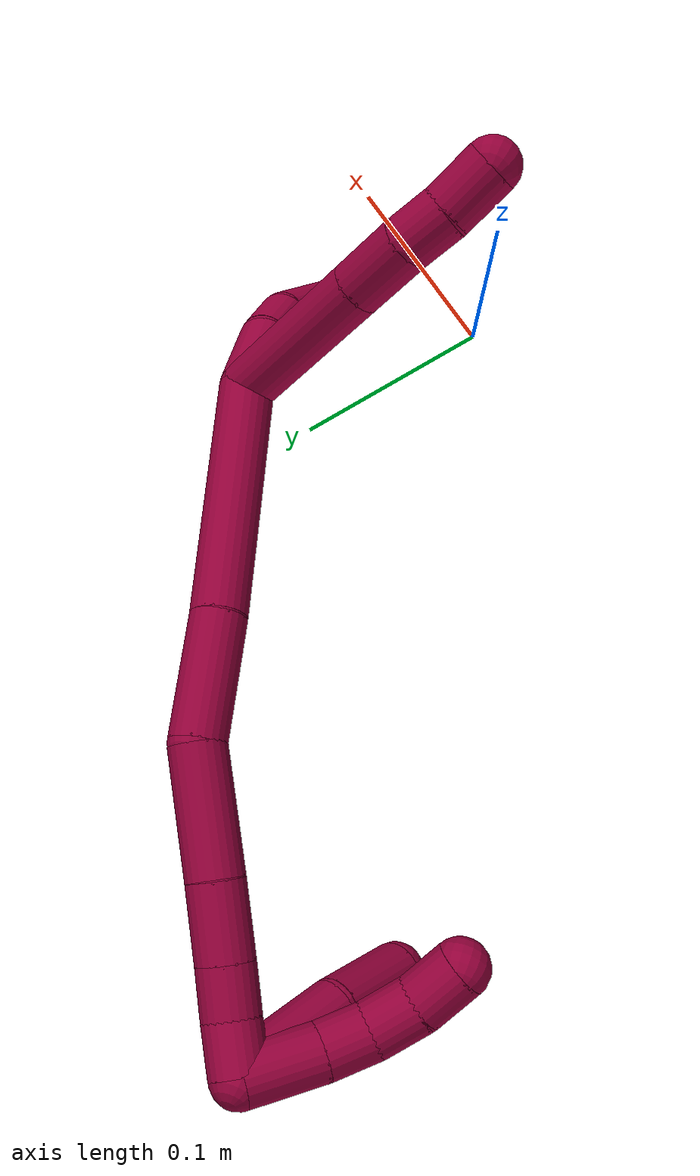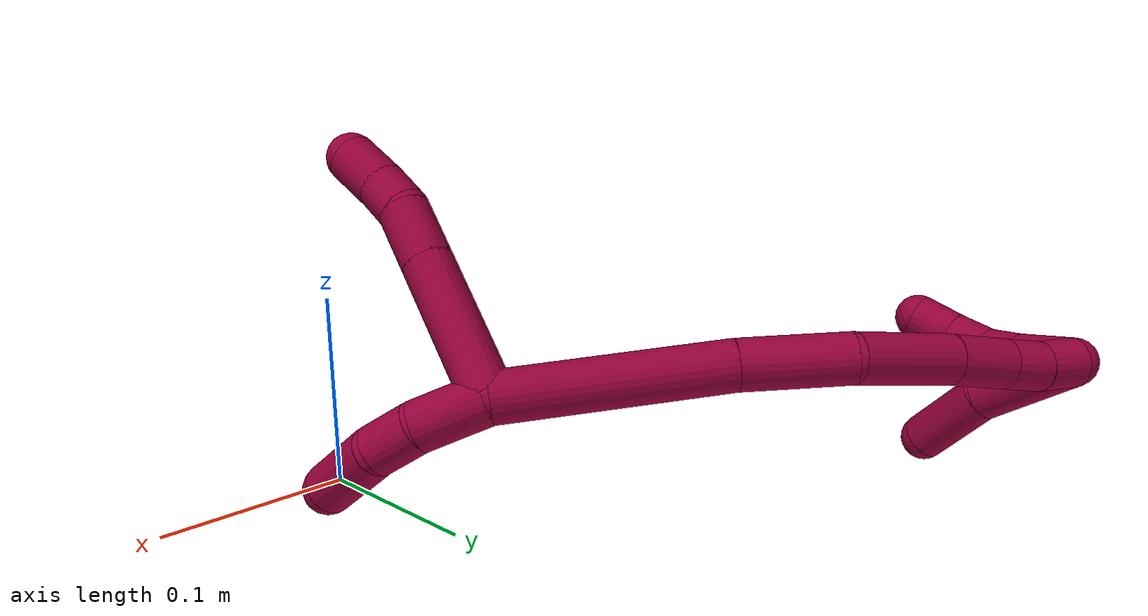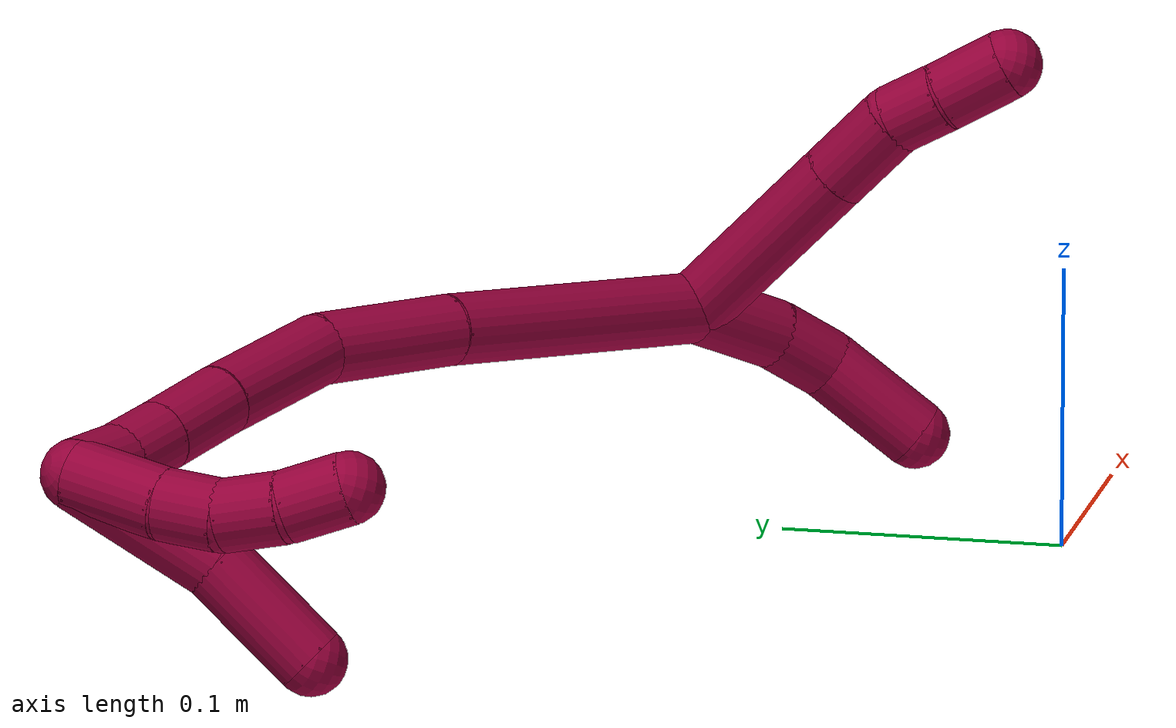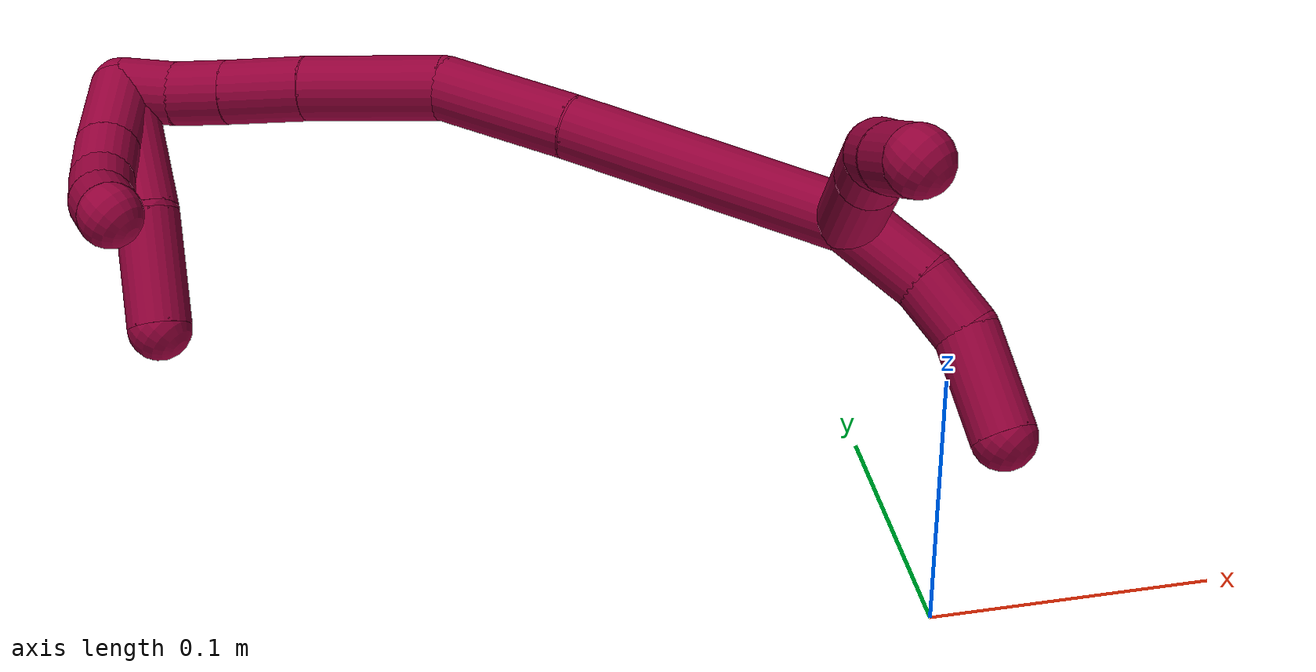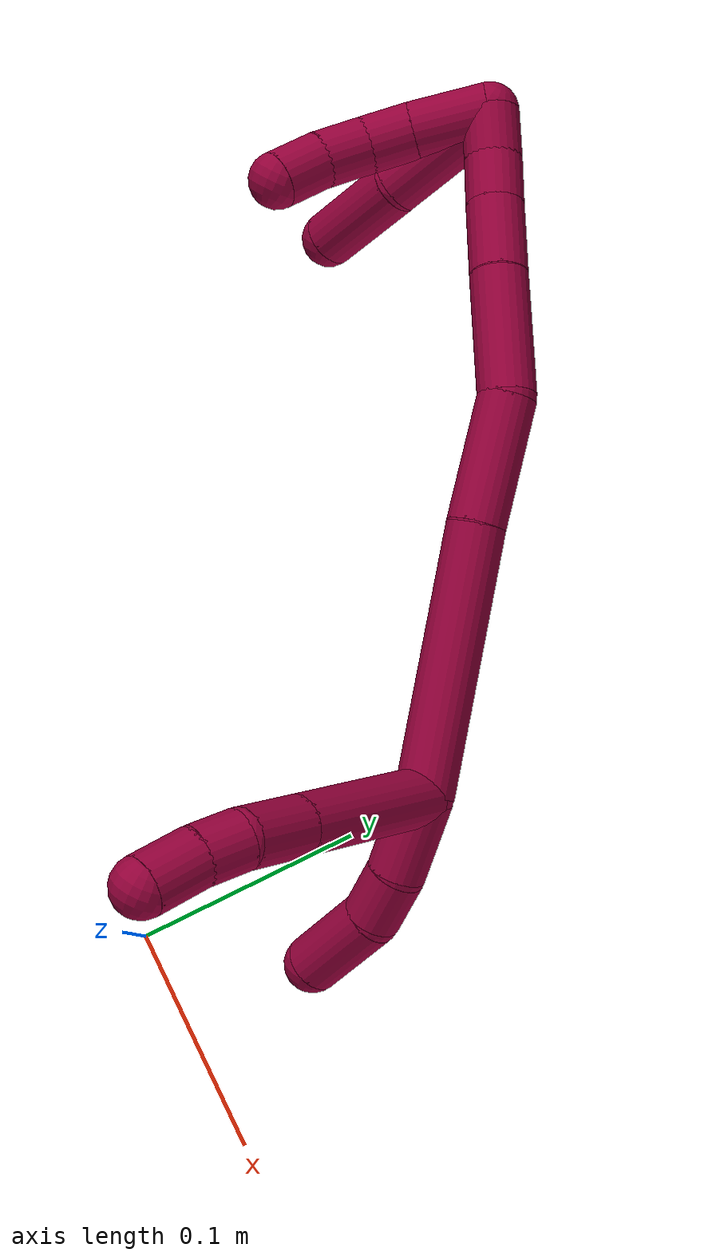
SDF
<sdf version="1.7">
 <world name="default">
  <model name="8">
   <static>0</static>
   <link name="8">
    <collision name="collision-cylinder-e_1_2_8">
     <pose>0.00767 -0.03556 -0.006796 1.75964 0.208768 0.252026</pose>
     <geometry><cylinder><radius>0.0125</radius><length>0.074013</length></cylinder></geometry>
     <surface>
      <friction><ode><mu>1.16</mu><mu2>1.16</mu2><slip1>0</slip1><slip2>0</slip2></ode></friction>
      <contact><ode><kp>1e+06</kp><kd>1</kd><max_vel>0</max_vel><min_depth>0.001</min_depth></ode></contact>
     </surface>
    </collision>
    <visual name="visual-cylinder-e_1_2_8">
     <pose>0.00767 -0.03556 -0.006796 1.75964 0.208768 0.252026</pose>
     <geometry><cylinder><radius>0.0125</radius><length>0.074013</length></cylinder></geometry>
     <material><ambient>0.584314 0 0.227451 1</ambient></material>
    </visual>
    <collision name="collision-cylinder-e_2_8_9">
     <pose>0.018514 -0.085842 -0.016408 1.75978 0.208717 0.251998</pose>
     <geometry><cylinder><radius>0.0125</radius><length>0.030644</length></cylinder></geometry>
     <surface>
      <friction><ode><mu>1.16</mu><mu2>1.16</mu2><slip1>0</slip1><slip2>0</slip2></ode></friction>
      <contact><ode><kp>1e+06</kp><kd>1</kd><max_vel>0</max_vel><min_depth>0.001</min_depth></ode></contact>
     </surface>
    </collision>
    <visual name="visual-cylinder-e_2_8_9">
     <pose>0.018514 -0.085842 -0.016408 1.75978 0.208717 0.251998</pose>
     <geometry><cylinder><radius>0.0125</radius><length>0.030644</length></cylinder></geometry>
     <material><ambient>0.584314 0 0.227451 1</ambient></material>
    </visual>
    <collision name="collision-cylinder-e_3_9_10">
     <pose>0.022336 -0.109512 -0.023729 2.03719 0.064527 0.104669</pose>
     <geometry><cylinder><radius>0.0125</radius><length>0.020078</length></cylinder></geometry>
     <surface>
      <friction><ode><mu>1.16</mu><mu2>1.16</mu2><slip1>0</slip1><slip2>0</slip2></ode></friction>
      <contact><ode><kp>1e+06</kp><kd>1</kd><max_vel>0</max_vel><min_depth>0.001</min_depth></ode></contact>
     </surface>
    </collision>
    <visual name="visual-cylinder-e_3_9_10">
     <pose>0.022336 -0.109512 -0.023729 2.03719 0.064527 0.104669</pose>
     <geometry><cylinder><radius>0.0125</radius><length>0.020078</length></cylinder></geometry>
     <material><ambient>0.584314 0 0.227451 1</ambient></material>
    </visual>
    <collision name="collision-cylinder-e_4_10_6">
     <pose>0.024982 -0.1292 -0.034577 2.10425 0.158827 0.277055</pose>
     <geometry><cylinder><radius>0.0125</radius><length>0.025265</length></cylinder></geometry>
     <surface>
      <friction><ode><mu>1.16</mu><mu2>1.16</mu2><slip1>0</slip1><slip2>0</slip2></ode></friction>
      <contact><ode><kp>1e+06</kp><kd>1</kd><max_vel>0</max_vel><min_depth>0.001</min_depth></ode></contact>
     </surface>
    </collision>
    <visual name="visual-cylinder-e_4_10_6">
     <pose>0.024982 -0.1292 -0.034577 2.10425 0.158827 0.277055</pose>
     <geometry><cylinder><radius>0.0125</radius><length>0.025265</length></cylinder></geometry>
     <material><ambient>0.584314 0 0.227451 1</ambient></material>
    </visual>
    <collision name="collision-cylinder-e_1_2_11">
     <pose>0.001226 0.001349 -0.017667 -3.06536 0.06909 -1.47249</pose>
     <geometry><cylinder><radius>0.0125</radius><length>0.035521</length></cylinder></geometry>
     <surface>
      <friction><ode><mu>1.16</mu><mu2>1.16</mu2><slip1>0</slip1><slip2>0</slip2></ode></friction>
      <contact><ode><kp>1e+06</kp><kd>1</kd><max_vel>0</max_vel><min_depth>0.001</min_depth></ode></contact>
     </surface>
    </collision>
    <visual name="visual-cylinder-e_1_2_11">
     <pose>0.001226 0.001349 -0.017667 -3.06536 0.06909 -1.47249</pose>
     <geometry><cylinder><radius>0.0125</radius><length>0.035521</length></cylinder></geometry>
     <material><ambient>0.584314 0 0.227451 1</ambient></material>
    </visual>
    <collision name="collision-cylinder-e_2_11_12">
     <pose>0.000638 0.003809 -0.047177 -3.04815 -0.151329 2.03635</pose>
     <geometry><cylinder><radius>0.0125</radius><length>0.024065</length></cylinder></geometry>
     <surface>
      <friction><ode><mu>1.16</mu><mu2>1.16</mu2><slip1>0</slip1><slip2>0</slip2></ode></friction>
      <contact><ode><kp>1e+06</kp><kd>1</kd><max_vel>0</max_vel><min_depth>0.001</min_depth></ode></contact>
     </surface>
    </collision>
    <visual name="visual-cylinder-e_2_11_12">
     <pose>0.000638 0.003809 -0.047177 -3.04815 -0.151329 2.03635</pose>
     <geometry><cylinder><radius>0.0125</radius><length>0.024065</length></cylinder></geometry>
     <material><ambient>0.584314 0 0.227451 1</ambient></material>
    </visual>
    <collision name="collision-cylinder-e_3_12_5">
     <pose>-0.010501 0.004875 -0.076946 3.13918 -0.479698 -3.13174</pose>
     <geometry><cylinder><radius>0.0125</radius><length>0.040414</length></cylinder></geometry>
     <surface>
      <friction><ode><mu>1.16</mu><mu2>1.16</mu2><slip1>0</slip1><slip2>0</slip2></ode></friction>
      <contact><ode><kp>1e+06</kp><kd>1</kd><max_vel>0</max_vel><min_depth>0.001</min_depth></ode></contact>
     </surface>
    </collision>
    <visual name="visual-cylinder-e_3_12_5">
     <pose>-0.010501 0.004875 -0.076946 3.13918 -0.479698 -3.13174</pose>
     <geometry><cylinder><radius>0.0125</radius><length>0.040414</length></cylinder></geometry>
     <material><ambient>0.584314 0 0.227451 1</ambient></material>
    </visual>
    <collision name="collision-cylinder-e_1_2_13">
     <pose>-0.022013 0.001237 0.051924 -0.023821 -0.400883 0.00484</pose>
     <geometry><cylinder><radius>0.0125</radius><length>0.112822</length></cylinder></geometry>
     <surface>
      <friction><ode><mu>1.16</mu><mu2>1.16</mu2><slip1>0</slip1><slip2>0</slip2></ode></friction>
      <contact><ode><kp>1e+06</kp><kd>1</kd><max_vel>0</max_vel><min_depth>0.001</min_depth></ode></contact>
     </surface>
    </collision>
    <visual name="visual-cylinder-e_1_2_13">
     <pose>-0.022013 0.001237 0.051924 -0.023821 -0.400883 0.00484</pose>
     <geometry><cylinder><radius>0.0125</radius><length>0.112822</length></cylinder></geometry>
     <material><ambient>0.584314 0 0.227451 1</ambient></material>
    </visual>
    <collision name="collision-cylinder-e_2_13_14">
     <pose>-0.055085 0.005168 0.129059 -0.106439 -0.411281 0.022222</pose>
     <geometry><cylinder><radius>0.0125</radius><length>0.055323</length></cylinder></geometry>
     <surface>
      <friction><ode><mu>1.16</mu><mu2>1.16</mu2><slip1>0</slip1><slip2>0</slip2></ode></friction>
      <contact><ode><kp>1e+06</kp><kd>1</kd><max_vel>0</max_vel><min_depth>0.001</min_depth></ode></contact>
     </surface>
    </collision>
    <visual name="visual-cylinder-e_2_13_14">
     <pose>-0.055085 0.005168 0.129059 -0.106439 -0.411281 0.022222</pose>
     <geometry><cylinder><radius>0.0125</radius><length>0.055323</length></cylinder></geometry>
     <material><ambient>0.584314 0 0.227451 1</ambient></material>
    </visual>
    <collision name="collision-cylinder-e_3_14_15">
     <pose>-0.084348 0.007605 0.175028 0.012344 -0.71992 -0.004646</pose>
     <geometry><cylinder><radius>0.0125</radius><length>0.055221</length></cylinder></geometry>
     <surface>
      <friction><ode><mu>1.16</mu><mu2>1.16</mu2><slip1>0</slip1><slip2>0</slip2></ode></friction>
      <contact><ode><kp>1e+06</kp><kd>1</kd><max_vel>0</max_vel><min_depth>0.001</min_depth></ode></contact>
     </surface>
    </collision>
    <visual name="visual-cylinder-e_3_14_15">
     <pose>-0.084348 0.007605 0.175028 0.012344 -0.71992 -0.004646</pose>
     <geometry><cylinder><radius>0.0125</radius><length>0.055221</length></cylinder></geometry>
     <material><ambient>0.584314 0 0.227451 1</ambient></material>
    </visual>
    <collision name="collision-cylinder-e_4_15_16">
     <pose>-0.113614 0.007955 0.207688 -0.050848 -0.748159 0.019965</pose>
     <geometry><cylinder><radius>0.0125</radius><length>0.032521</length></cylinder></geometry>
     <surface>
      <friction><ode><mu>1.16</mu><mu2>1.16</mu2><slip1>0</slip1><slip2>0</slip2></ode></friction>
      <contact><ode><kp>1e+06</kp><kd>1</kd><max_vel>0</max_vel><min_depth>0.001</min_depth></ode></contact>
     </surface>
    </collision>
    <visual name="visual-cylinder-e_4_15_16">
     <pose>-0.113614 0.007955 0.207688 -0.050848 -0.748159 0.019965</pose>
     <geometry><cylinder><radius>0.0125</radius><length>0.032521</length></cylinder></geometry>
     <material><ambient>0.584314 0 0.227451 1</ambient></material>
    </visual>
    <collision name="collision-cylinder-e_5_16_17">
     <pose>-0.13203 0.008999 0.227768 -0.053533 -0.731675 0.020512</pose>
     <geometry><cylinder><radius>0.0125</radius><length>0.022013</length></cylinder></geometry>
     <surface>
      <friction><ode><mu>1.16</mu><mu2>1.16</mu2><slip1>0</slip1><slip2>0</slip2></ode></friction>
      <contact><ode><kp>1e+06</kp><kd>1</kd><max_vel>0</max_vel><min_depth>0.001</min_depth></ode></contact>
     </surface>
    </collision>
    <visual name="visual-cylinder-e_5_16_17">
     <pose>-0.13203 0.008999 0.227768 -0.053533 -0.731675 0.020512</pose>
     <geometry><cylinder><radius>0.0125</radius><length>0.022013</length></cylinder></geometry>
     <material><ambient>0.584314 0 0.227451 1</ambient></material>
    </visual>
    <collision name="collision-cylinder-e_6_17_1">
     <pose>-0.146028 0.008524 0.244728 0.103612 -0.645156 -0.03466</pose>
     <geometry><cylinder><radius>0.0125</radius><length>0.0221</length></cylinder></geometry>
     <surface>
      <friction><ode><mu>1.16</mu><mu2>1.16</mu2><slip1>0</slip1><slip2>0</slip2></ode></friction>
      <contact><ode><kp>1e+06</kp><kd>1</kd><max_vel>0</max_vel><min_depth>0.001</min_depth></ode></contact>
     </surface>
    </collision>
    <visual name="visual-cylinder-e_6_17_1">
     <pose>-0.146028 0.008524 0.244728 0.103612 -0.645156 -0.03466</pose>
     <geometry><cylinder><radius>0.0125</radius><length>0.0221</length></cylinder></geometry>
     <material><ambient>0.584314 0 0.227451 1</ambient></material>
    </visual>
    <collision name="collision-cylinder-e_1_1_18">
     <pose>-0.165896 0.003126 0.229899 2.95389 -0.503003 -2.43927</pose>
     <geometry><cylinder><radius>0.0125</radius><length>0.05486</length></cylinder></geometry>
     <surface>
      <friction><ode><mu>1.16</mu><mu2>1.16</mu2><slip1>0</slip1><slip2>0</slip2></ode></friction>
      <contact><ode><kp>1e+06</kp><kd>1</kd><max_vel>0</max_vel><min_depth>0.001</min_depth></ode></contact>
     </surface>
    </collision>
    <visual name="visual-cylinder-e_1_1_18">
     <pose>-0.165896 0.003126 0.229899 2.95389 -0.503003 -2.43927</pose>
     <geometry><cylinder><radius>0.0125</radius><length>0.05486</length></cylinder></geometry>
     <material><ambient>0.584314 0 0.227451 1</ambient></material>
    </visual>
    <collision name="collision-cylinder-e_2_18_4">
     <pose>-0.192975 -0.001365 0.188473 3.14126 -0.661014 -3.14062</pose>
     <geometry><cylinder><radius>0.0125</radius><length>0.04514</length></cylinder></geometry>
     <surface>
      <friction><ode><mu>1.16</mu><mu2>1.16</mu2><slip1>0</slip1><slip2>0</slip2></ode></friction>
      <contact><ode><kp>1e+06</kp><kd>1</kd><max_vel>0</max_vel><min_depth>0.001</min_depth></ode></contact>
     </surface>
    </collision>
    <visual name="visual-cylinder-e_2_18_4">
     <pose>-0.192975 -0.001365 0.188473 3.14126 -0.661014 -3.14062</pose>
     <geometry><cylinder><radius>0.0125</radius><length>0.04514</length></cylinder></geometry>
     <material><ambient>0.584314 0 0.227451 1</ambient></material>
    </visual>
    <collision name="collision-cylinder-e_1_1_19">
     <pose>-0.161488 -0.002295 0.242858 2.39248 -0.54483 -1.23565</pose>
     <geometry><cylinder><radius>0.0125</radius><length>0.034017</length></cylinder></geometry>
     <surface>
      <friction><ode><mu>1.16</mu><mu2>1.16</mu2><slip1>0</slip1><slip2>0</slip2></ode></friction>
      <contact><ode><kp>1e+06</kp><kd>1</kd><max_vel>0</max_vel><min_depth>0.001</min_depth></ode></contact>
     </surface>
    </collision>
    <visual name="visual-cylinder-e_1_1_19">
     <pose>-0.161488 -0.002295 0.242858 2.39248 -0.54483 -1.23565</pose>
     <geometry><cylinder><radius>0.0125</radius><length>0.034017</length></cylinder></geometry>
     <material><ambient>0.584314 0 0.227451 1</ambient></material>
    </visual>
    <collision name="collision-cylinder-e_2_19_20">
     <pose>-0.174641 -0.018911 0.225193 2.37825 -0.420363 -0.977114</pose>
     <geometry><cylinder><radius>0.0125</radius><length>0.021263</length></cylinder></geometry>
     <surface>
      <friction><ode><mu>1.16</mu><mu2>1.16</mu2><slip1>0</slip1><slip2>0</slip2></ode></friction>
      <contact><ode><kp>1e+06</kp><kd>1</kd><max_vel>0</max_vel><min_depth>0.001</min_depth></ode></contact>
     </surface>
    </collision>
    <visual name="visual-cylinder-e_2_19_20">
     <pose>-0.174641 -0.018911 0.225193 2.37825 -0.420363 -0.977114</pose>
     <geometry><cylinder><radius>0.0125</radius><length>0.021263</length></cylinder></geometry>
     <material><ambient>0.584314 0 0.227451 1</ambient></material>
    </visual>
    <collision name="collision-cylinder-e_3_20_21">
     <pose>-0.180523 -0.034313 0.211371 2.2353 -0.138864 -0.283717</pose>
     <geometry><cylinder><radius>0.0125</radius><length>0.022297</length></cylinder></geometry>
     <surface>
      <friction><ode><mu>1.16</mu><mu2>1.16</mu2><slip1>0</slip1><slip2>0</slip2></ode></friction>
      <contact><ode><kp>1e+06</kp><kd>1</kd><max_vel>0</max_vel><min_depth>0.001</min_depth></ode></contact>
     </surface>
    </collision>
    <visual name="visual-cylinder-e_3_20_21">
     <pose>-0.180523 -0.034313 0.211371 2.2353 -0.138864 -0.283717</pose>
     <geometry><cylinder><radius>0.0125</radius><length>0.022297</length></cylinder></geometry>
     <material><ambient>0.584314 0 0.227451 1</ambient></material>
    </visual>
    <collision name="collision-cylinder-e_4_21_3">
     <pose>-0.181336 -0.051693 0.197514 2.25238 0.065209 0.136707</pose>
     <geometry><cylinder><radius>0.0125</radius><length>0.022422</length></cylinder></geometry>
     <surface>
      <friction><ode><mu>1.16</mu><mu2>1.16</mu2><slip1>0</slip1><slip2>0</slip2></ode></friction>
      <contact><ode><kp>1e+06</kp><kd>1</kd><max_vel>0</max_vel><min_depth>0.001</min_depth></ode></contact>
     </surface>
    </collision>
    <visual name="visual-cylinder-e_4_21_3">
     <pose>-0.181336 -0.051693 0.197514 2.25238 0.065209 0.136707</pose>
     <geometry><cylinder><radius>0.0125</radius><length>0.022422</length></cylinder></geometry>
     <material><ambient>0.584314 0 0.227451 1</ambient></material>
    </visual>
    <collision name="collision-sphere-3">
     <pose>-0.180605 -0.060381 0.190465 0 -0 0</pose>
     <geometry><sphere><radius>0.0125</radius></sphere></geometry>
     <surface>
      <friction><ode><mu>1.16</mu><mu2>1.16</mu2><slip1>0</slip1><slip2>0</slip2></ode></friction>
      <contact><ode><kp>1e+06</kp><kd>1</kd><max_vel>0</max_vel><min_depth>0.001</min_depth></ode></contact>
     </surface>
    </collision>
    <visual name="visual-sphere-3">
     <pose>-0.180605 -0.060381 0.190465 0 -0 0</pose>
     <geometry><sphere><radius>0.0125</radius></sphere></geometry>
     <material><ambient>0.584314 0 0.227451 1</ambient></material>
    </visual>
    <collision name="collision-sphere-21">
     <pose>-0.182067 -0.043005 0.204562 0 -0 0</pose>
     <geometry><sphere><radius>0.0125</radius></sphere></geometry>
     <surface>
      <friction><ode><mu>1.16</mu><mu2>1.16</mu2><slip1>0</slip1><slip2>0</slip2></ode></friction>
      <contact><ode><kp>1e+06</kp><kd>1</kd><max_vel>0</max_vel><min_depth>0.001</min_depth></ode></contact>
     </surface>
    </collision>
    <visual name="visual-sphere-21">
     <pose>-0.182067 -0.043005 0.204562 0 -0 0</pose>
     <geometry><sphere><radius>0.0125</radius></sphere></geometry>
     <material><ambient>0.584314 0 0.227451 1</ambient></material>
    </visual>
    <collision name="collision-sphere-20">
     <pose>-0.17898 -0.025621 0.21818 0 -0 0</pose>
     <geometry><sphere><radius>0.0125</radius></sphere></geometry>
     <surface>
      <friction><ode><mu>1.16</mu><mu2>1.16</mu2><slip1>0</slip1><slip2>0</slip2></ode></friction>
      <contact><ode><kp>1e+06</kp><kd>1</kd><max_vel>0</max_vel><min_depth>0.001</min_depth></ode></contact>
     </surface>
    </collision>
    <visual name="visual-sphere-20">
     <pose>-0.17898 -0.025621 0.21818 0 -0 0</pose>
     <geometry><sphere><radius>0.0125</radius></sphere></geometry>
     <material><ambient>0.584314 0 0.227451 1</ambient></material>
    </visual>
    <collision name="collision-sphere-19">
     <pose>-0.170303 -0.012201 0.232206 0 -0 0</pose>
     <geometry><sphere><radius>0.0125</radius></sphere></geometry>
     <surface>
      <friction><ode><mu>1.16</mu><mu2>1.16</mu2><slip1>0</slip1><slip2>0</slip2></ode></friction>
      <contact><ode><kp>1e+06</kp><kd>1</kd><max_vel>0</max_vel><min_depth>0.001</min_depth></ode></contact>
     </surface>
    </collision>
    <visual name="visual-sphere-19">
     <pose>-0.170303 -0.012201 0.232206 0 -0 0</pose>
     <geometry><sphere><radius>0.0125</radius></sphere></geometry>
     <material><ambient>0.584314 0 0.227451 1</ambient></material>
    </visual>
    <collision name="collision-sphere-11">
     <pose>0.002452 0.002699 -0.035334 0 -0 0</pose>
     <geometry><sphere><radius>0.0125</radius></sphere></geometry>
     <surface>
      <friction><ode><mu>1.16</mu><mu2>1.16</mu2><slip1>0</slip1><slip2>0</slip2></ode></friction>
      <contact><ode><kp>1e+06</kp><kd>1</kd><max_vel>0</max_vel><min_depth>0.001</min_depth></ode></contact>
     </surface>
    </collision>
    <visual name="visual-sphere-11">
     <pose>0.002452 0.002699 -0.035334 0 -0 0</pose>
     <geometry><sphere><radius>0.0125</radius></sphere></geometry>
     <material><ambient>0.584314 0 0.227451 1</ambient></material>
    </visual>
    <collision name="collision-sphere-6">
     <pose>0.02698 -0.139941 -0.04092 0 -0 0</pose>
     <geometry><sphere><radius>0.0125</radius></sphere></geometry>
     <surface>
      <friction><ode><mu>1.16</mu><mu2>1.16</mu2><slip1>0</slip1><slip2>0</slip2></ode></friction>
      <contact><ode><kp>1e+06</kp><kd>1</kd><max_vel>0</max_vel><min_depth>0.001</min_depth></ode></contact>
     </surface>
    </collision>
    <visual name="visual-sphere-6">
     <pose>0.02698 -0.139941 -0.04092 0 -0 0</pose>
     <geometry><sphere><radius>0.0125</radius></sphere></geometry>
     <material><ambient>0.584314 0 0.227451 1</ambient></material>
    </visual>
    <collision name="collision-sphere-10">
     <pose>0.022984 -0.11846 -0.028234 0 -0 0</pose>
     <geometry><sphere><radius>0.0125</radius></sphere></geometry>
     <surface>
      <friction><ode><mu>1.16</mu><mu2>1.16</mu2><slip1>0</slip1><slip2>0</slip2></ode></friction>
      <contact><ode><kp>1e+06</kp><kd>1</kd><max_vel>0</max_vel><min_depth>0.001</min_depth></ode></contact>
     </surface>
    </collision>
    <visual name="visual-sphere-10">
     <pose>0.022984 -0.11846 -0.028234 0 -0 0</pose>
     <geometry><sphere><radius>0.0125</radius></sphere></geometry>
     <material><ambient>0.584314 0 0.227451 1</ambient></material>
    </visual>
    <collision name="collision-sphere-9">
     <pose>0.021689 -0.100564 -0.019224 0 -0 0</pose>
     <geometry><sphere><radius>0.0125</radius></sphere></geometry>
     <surface>
      <friction><ode><mu>1.16</mu><mu2>1.16</mu2><slip1>0</slip1><slip2>0</slip2></ode></friction>
      <contact><ode><kp>1e+06</kp><kd>1</kd><max_vel>0</max_vel><min_depth>0.001</min_depth></ode></contact>
     </surface>
    </collision>
    <visual name="visual-sphere-9">
     <pose>0.021689 -0.100564 -0.019224 0 -0 0</pose>
     <geometry><sphere><radius>0.0125</radius></sphere></geometry>
     <material><ambient>0.584314 0 0.227451 1</ambient></material>
    </visual>
    <collision name="collision-sphere-2">
     <geometry><sphere><radius>0.0125</radius></sphere></geometry>
     <surface>
      <friction><ode><mu>1.16</mu><mu2>1.16</mu2><slip1>0</slip1><slip2>0</slip2></ode></friction>
      <contact><ode><kp>1e+06</kp><kd>1</kd><max_vel>0</max_vel><min_depth>0.001</min_depth></ode></contact>
     </surface>
    </collision>
    <visual name="visual-sphere-2">
     <geometry><sphere><radius>0.0125</radius></sphere></geometry>
     <material><ambient>0.584314 0 0.227451 1</ambient></material>
    </visual>
    <collision name="collision-sphere-8">
     <pose>0.01534 -0.071119 -0.013593 0 -0 0</pose>
     <geometry><sphere><radius>0.0125</radius></sphere></geometry>
     <surface>
      <friction><ode><mu>1.16</mu><mu2>1.16</mu2><slip1>0</slip1><slip2>0</slip2></ode></friction>
      <contact><ode><kp>1e+06</kp><kd>1</kd><max_vel>0</max_vel><min_depth>0.001</min_depth></ode></contact>
     </surface>
    </collision>
    <visual name="visual-sphere-8">
     <pose>0.01534 -0.071119 -0.013593 0 -0 0</pose>
     <geometry><sphere><radius>0.0125</radius></sphere></geometry>
     <material><ambient>0.584314 0 0.227451 1</ambient></material>
    </visual>
    <collision name="collision-sphere-12">
     <pose>-0.001176 0.004918 -0.05902 0 -0 0</pose>
     <geometry><sphere><radius>0.0125</radius></sphere></geometry>
     <surface>
      <friction><ode><mu>1.16</mu><mu2>1.16</mu2><slip1>0</slip1><slip2>0</slip2></ode></friction>
      <contact><ode><kp>1e+06</kp><kd>1</kd><max_vel>0</max_vel><min_depth>0.001</min_depth></ode></contact>
     </surface>
    </collision>
    <visual name="visual-sphere-12">
     <pose>-0.001176 0.004918 -0.05902 0 -0 0</pose>
     <geometry><sphere><radius>0.0125</radius></sphere></geometry>
     <material><ambient>0.584314 0 0.227451 1</ambient></material>
    </visual>
    <collision name="collision-sphere-5">
     <pose>-0.019827 0.004832 -0.094872 0 -0 0</pose>
     <geometry><sphere><radius>0.0125</radius></sphere></geometry>
     <surface>
      <friction><ode><mu>1.16</mu><mu2>1.16</mu2><slip1>0</slip1><slip2>0</slip2></ode></friction>
      <contact><ode><kp>1e+06</kp><kd>1</kd><max_vel>0</max_vel><min_depth>0.001</min_depth></ode></contact>
     </surface>
    </collision>
    <visual name="visual-sphere-5">
     <pose>-0.019827 0.004832 -0.094872 0 -0 0</pose>
     <geometry><sphere><radius>0.0125</radius></sphere></geometry>
     <material><ambient>0.584314 0 0.227451 1</ambient></material>
    </visual>
    <collision name="collision-sphere-13">
     <pose>-0.044027 0.002474 0.103847 0 -0 0</pose>
     <geometry><sphere><radius>0.0125</radius></sphere></geometry>
     <surface>
      <friction><ode><mu>1.16</mu><mu2>1.16</mu2><slip1>0</slip1><slip2>0</slip2></ode></friction>
      <contact><ode><kp>1e+06</kp><kd>1</kd><max_vel>0</max_vel><min_depth>0.001</min_depth></ode></contact>
     </surface>
    </collision>
    <visual name="visual-sphere-13">
     <pose>-0.044027 0.002474 0.103847 0 -0 0</pose>
     <geometry><sphere><radius>0.0125</radius></sphere></geometry>
     <material><ambient>0.584314 0 0.227451 1</ambient></material>
    </visual>
    <collision name="collision-sphere-14">
     <pose>-0.066144 0.007861 0.15427 0 -0 0</pose>
     <geometry><sphere><radius>0.0125</radius></sphere></geometry>
     <surface>
      <friction><ode><mu>1.16</mu><mu2>1.16</mu2><slip1>0</slip1><slip2>0</slip2></ode></friction>
      <contact><ode><kp>1e+06</kp><kd>1</kd><max_vel>0</max_vel><min_depth>0.001</min_depth></ode></contact>
     </surface>
    </collision>
    <visual name="visual-sphere-14">
     <pose>-0.066144 0.007861 0.15427 0 -0 0</pose>
     <geometry><sphere><radius>0.0125</radius></sphere></geometry>
     <material><ambient>0.584314 0 0.227451 1</ambient></material>
    </visual>
    <collision name="collision-sphere-15">
     <pose>-0.102552 0.007349 0.195785 0 -0 0</pose>
     <geometry><sphere><radius>0.0125</radius></sphere></geometry>
     <surface>
      <friction><ode><mu>1.16</mu><mu2>1.16</mu2><slip1>0</slip1><slip2>0</slip2></ode></friction>
      <contact><ode><kp>1e+06</kp><kd>1</kd><max_vel>0</max_vel><min_depth>0.001</min_depth></ode></contact>
     </surface>
    </collision>
    <visual name="visual-sphere-15">
     <pose>-0.102552 0.007349 0.195785 0 -0 0</pose>
     <geometry><sphere><radius>0.0125</radius></sphere></geometry>
     <material><ambient>0.584314 0 0.227451 1</ambient></material>
    </visual>
    <collision name="collision-sphere-16">
     <pose>-0.124676 0.00856 0.21959 0 -0 0</pose>
     <geometry><sphere><radius>0.0125</radius></sphere></geometry>
     <surface>
      <friction><ode><mu>1.16</mu><mu2>1.16</mu2><slip1>0</slip1><slip2>0</slip2></ode></friction>
      <contact><ode><kp>1e+06</kp><kd>1</kd><max_vel>0</max_vel><min_depth>0.001</min_depth></ode></contact>
     </surface>
    </collision>
    <visual name="visual-sphere-16">
     <pose>-0.124676 0.00856 0.21959 0 -0 0</pose>
     <geometry><sphere><radius>0.0125</radius></sphere></geometry>
     <material><ambient>0.584314 0 0.227451 1</ambient></material>
    </visual>
    <collision name="collision-sphere-17">
     <pose>-0.139383 0.009437 0.235946 0 -0 0</pose>
     <geometry><sphere><radius>0.0125</radius></sphere></geometry>
     <surface>
      <friction><ode><mu>1.16</mu><mu2>1.16</mu2><slip1>0</slip1><slip2>0</slip2></ode></friction>
      <contact><ode><kp>1e+06</kp><kd>1</kd><max_vel>0</max_vel><min_depth>0.001</min_depth></ode></contact>
     </surface>
    </collision>
    <visual name="visual-sphere-17">
     <pose>-0.139383 0.009437 0.235946 0 -0 0</pose>
     <geometry><sphere><radius>0.0125</radius></sphere></geometry>
     <material><ambient>0.584314 0 0.227451 1</ambient></material>
    </visual>
    <collision name="collision-sphere-1">
     <pose>-0.152673 0.007611 0.253509 0 -0 0</pose>
     <geometry><sphere><radius>0.0125</radius></sphere></geometry>
     <surface>
      <friction><ode><mu>1.16</mu><mu2>1.16</mu2><slip1>0</slip1><slip2>0</slip2></ode></friction>
      <contact><ode><kp>1e+06</kp><kd>1</kd><max_vel>0</max_vel><min_depth>0.001</min_depth></ode></contact>
     </surface>
    </collision>
    <visual name="visual-sphere-1">
     <pose>-0.152673 0.007611 0.253509 0 -0 0</pose>
     <geometry><sphere><radius>0.0125</radius></sphere></geometry>
     <material><ambient>0.584314 0 0.227451 1</ambient></material>
    </visual>
    <collision name="collision-sphere-18">
     <pose>-0.179118 -0.001359 0.206289 0 -0 0</pose>
     <geometry><sphere><radius>0.0125</radius></sphere></geometry>
     <surface>
      <friction><ode><mu>1.16</mu><mu2>1.16</mu2><slip1>0</slip1><slip2>0</slip2></ode></friction>
      <contact><ode><kp>1e+06</kp><kd>1</kd><max_vel>0</max_vel><min_depth>0.001</min_depth></ode></contact>
     </surface>
    </collision>
    <visual name="visual-sphere-18">
     <pose>-0.179118 -0.001359 0.206289 0 -0 0</pose>
     <geometry><sphere><radius>0.0125</radius></sphere></geometry>
     <material><ambient>0.584314 0 0.227451 1</ambient></material>
    </visual>
    <collision name="collision-sphere-4">
     <pose>-0.206831 -0.00137 0.170657 0 -0 0</pose>
     <geometry><sphere><radius>0.0125</radius></sphere></geometry>
     <surface>
      <friction><ode><mu>1.16</mu><mu2>1.16</mu2><slip1>0</slip1><slip2>0</slip2></ode></friction>
      <contact><ode><kp>1e+06</kp><kd>1</kd><max_vel>0</max_vel><min_depth>0.001</min_depth></ode></contact>
     </surface>
    </collision>
    <visual name="visual-sphere-4">
     <pose>-0.206831 -0.00137 0.170657 0 -0 0</pose>
     <geometry><sphere><radius>0.0125</radius></sphere></geometry>
     <material><ambient>0.584314 0 0.227451 1</ambient></material>
    </visual>
    <inertial>
     <pose>-0.071037 -0.014924 0.10123 0 -0 0</pose>
     <mass>0.75</mass>
     <inertia>
      <ixx>0.000146</ixx>
      <ixy>0</ixy>
      <ixz>0</ixz>
      <iyy>0.000163</iyy>
      <iyz>0</iyz>
      <izz>0.000126</izz>
     </inertia>
    </inertial>
   </link>
   <pose>0.002817 0.132476 0.07814 -1.05549 -0.688875 0.304781</pose>
  </model>
 </world>
</sdf>
